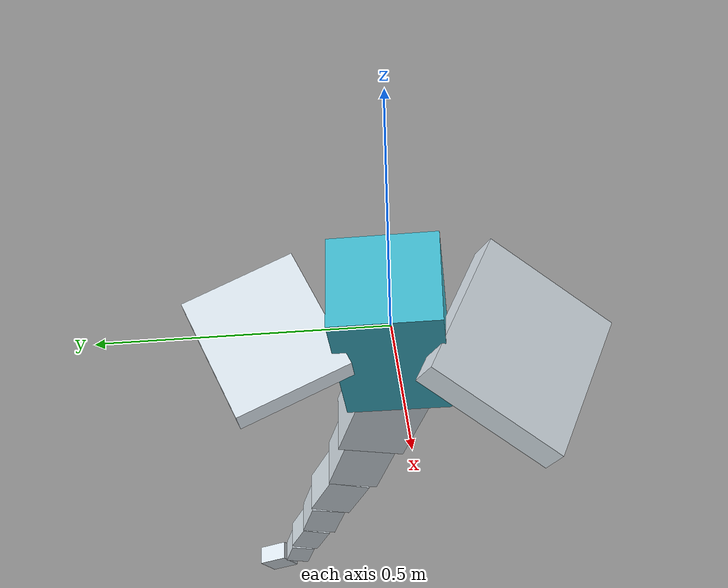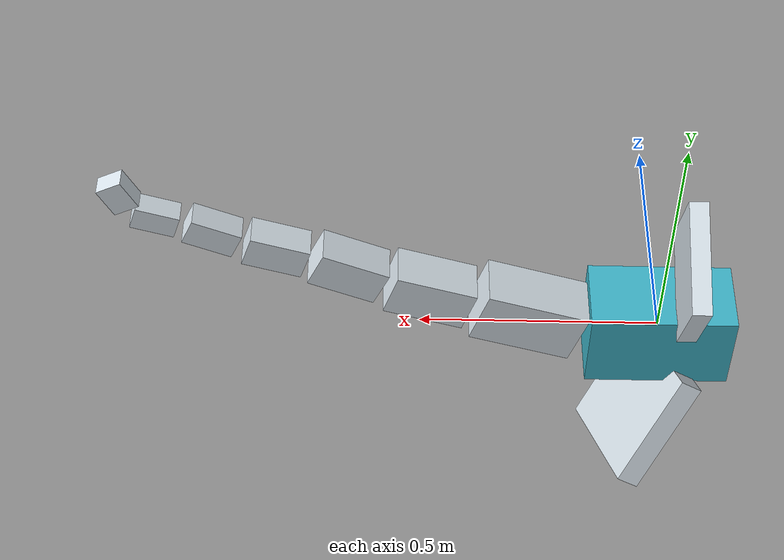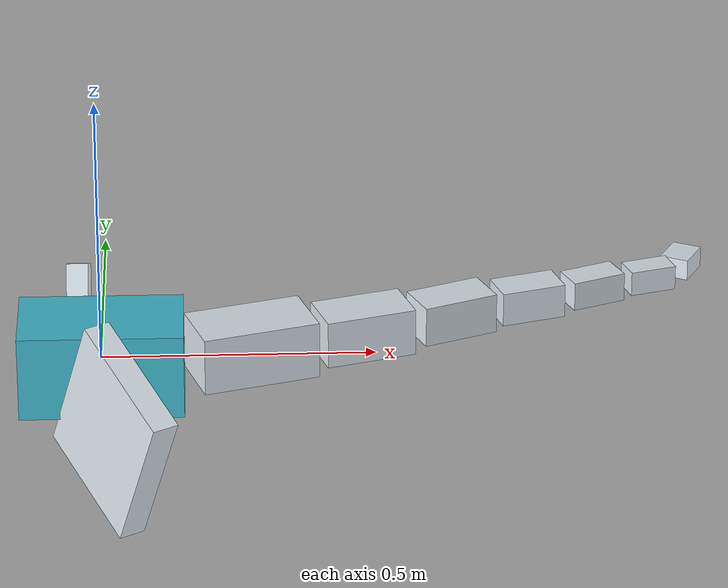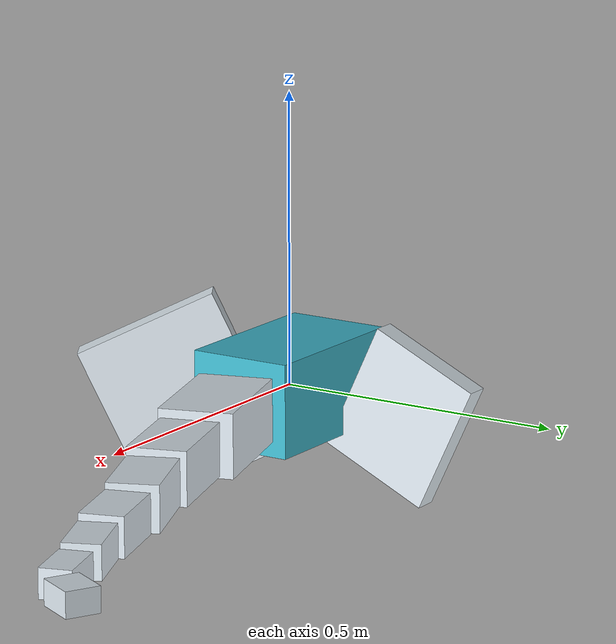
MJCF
<mujoco model="criatura">
  <compiler angle="degree" autolimits="true"/>
  <option timestep="0.002083" gravity="0 0 0" integrator="implicitfast"/>
  <default>
    <geom type="box" density="300.0" rgba="0.85 0.89 0.92 1"/>
    <joint type="hinge"/>
    <motor ctrlrange="-1 1"/>
  </default>
  <worldbody>
    <body name="p0_n0" pos="0.00000 0.00000 0.00000" quat="1.000000 0.000000 0.000000 0.000000">
      <freejoint name="raiz"/>
      <geom name="g_p0_n0" size="0.15000 0.09000 0.08000" rgba="0.25 0.72 0.8 1"/>
      <body name="p1_n1" pos="0.27399 0.03872 0.00000" quat="0.988568 0.000000 0.000000 0.150773">
        <joint name="p1_n1_j0" axis="1.0000 0.0000 0.0000" pos="-0.12989 0 0" range="-51.51 51.51" damping="0.6750"/>
        <joint name="p1_n1_j1" axis="0.0000 0.0000 1.0000" pos="-0.12989 0 0" range="-51.51 51.51" damping="0.6750"/>
        <geom name="g_p1_n1" size="0.10989 0.06240 0.05408"/>
        <body name="p2_n3" pos="0.21520 -0.00270 0.00000" quat="1.000000 0.000000 0.000000 0.000000">
          <joint name="p2_n3_j0" axis="1.0000 0.0000 0.0000" pos="-0.10531 0 0" range="-47.21 47.21" damping="0.4412"/>
          <joint name="p2_n3_j1" axis="0.0000 0.0000 1.0000" pos="-0.10531 0 0" range="-47.21 47.21" damping="0.4412"/>
          <geom name="g_p2_n3" size="0.08531 0.04922 0.04482"/>
          <body name="p3_n3" pos="0.17737 0.00920 0.00041" quat="0.998759 0.000000 0.000000 0.049798">
            <joint name="p3_n3_j0" axis="1.0000 0.0000 0.0000" pos="-0.09251 0 0" range="-47.21 47.21" damping="0.3188"/>
            <joint name="p3_n3_j1" axis="0.0000 0.0000 1.0000" pos="-0.09251 0 0" range="-47.21 47.21" damping="0.3188"/>
            <geom name="g_p3_n3" size="0.07251 0.04184 0.03810"/>
            <body name="p4_n3" pos="0.15375 -0.00812 0.00035" quat="0.998759 0.000000 0.000000 -0.049798">
              <joint name="p4_n3_j0" axis="1.0000 0.0000 0.0000" pos="-0.08164 0 0" range="-47.21 47.21" damping="0.2303"/>
              <joint name="p4_n3_j1" axis="0.0000 0.0000 1.0000" pos="-0.08164 0 0" range="-47.21 47.21" damping="0.2303"/>
              <geom name="g_p4_n3" size="0.06164 0.03556 0.03238"/>
              <body name="p5_n3" pos="0.13367 0.00720 0.00030" quat="0.998759 0.000000 0.000000 0.049798">
                <joint name="p5_n3_j0" axis="1.0000 0.0000 0.0000" pos="-0.07239 0 0" range="-47.21 47.21" damping="0.1664"/>
                <joint name="p5_n3_j1" axis="0.0000 0.0000 1.0000" pos="-0.07239 0 0" range="-47.21 47.21" damping="0.1664"/>
                <geom name="g_p5_n3" size="0.05239 0.03023 0.02753"/>
                <body name="p6_n3" pos="0.11660 -0.00642 0.00025" quat="0.998759 0.000000 0.000000 -0.049798">
                  <joint name="p6_n3_j0" axis="1.0000 0.0000 0.0000" pos="-0.06453 0 0" range="-47.21 47.21" damping="0.1202"/>
                  <joint name="p6_n3_j1" axis="0.0000 0.0000 1.0000" pos="-0.06453 0 0" range="-47.21 47.21" damping="0.1202"/>
                  <geom name="g_p6_n3" size="0.04453 0.02569 0.02340"/>
                  <body name="p7_n4" pos="0.08254 0.03872 0.00000" quat="0.922091 0.000000 0.000000 0.386973">
                    <joint name="p7_n4_j0" axis="0.0000 0.0000 1.0000" pos="-0.05426 0 0" range="-40.13 40.13" damping="0.1096"/>
                    <joint name="p7_n4_j1" axis="1.0000 0.0000 0.0000" pos="-0.05426 0 0" range="-40.13 40.13" damping="0.1096"/>
                    <geom name="g_p7_n4" size="0.03426 0.02740 0.02000"/>
                  </body>
                </body>
              </body>
            </body>
          </body>
        </body>
      </body>
      <body name="p8_n2" pos="-0.04500 0.19876 -0.03471" quat="0.596368 0.379928 0.596368 0.379928">
        <joint name="p8_n2_j0" axis="0.0000 0.0000 1.0000" pos="-0.12000 0 0" range="-49.68 49.68" damping="0.4676"/>
        <joint name="p8_n2_j1" axis="1.0000 0.0000 0.0000" pos="-0.12000 0 0" range="-49.68 49.68" damping="0.4676"/>
        <geom name="g_p8_n2" size="0.10000 0.11690 0.02000"/>
      </body>
      <body name="p9_n2" pos="0.02523 -0.20268 -0.04592" quat="0.677873 -0.529324 0.468845 -0.201216">
        <joint name="p9_n2_j0" axis="0.0000 0.0000 1.0000" pos="-0.14651 0 0" range="-49.68 49.68" damping="0.7483"/>
        <joint name="p9_n2_j1" axis="1.0000 0.0000 0.0000" pos="-0.14651 0 0" range="-49.68 49.68" damping="0.7483"/>
        <geom name="g_p9_n2" size="0.12651 0.14789 0.02530"/>
      </body>
    </body>
  </worldbody>
  <actuator>
    <motor name="m_p1_n1_j0" joint="p1_n1_j0" gear="-13.5000"/>
    <motor name="m_p1_n1_j1" joint="p1_n1_j1" gear="-13.5000"/>
    <motor name="m_p2_n3_j0" joint="p2_n3_j0" gear="8.8241"/>
    <motor name="m_p2_n3_j1" joint="p2_n3_j1" gear="8.8241"/>
    <motor name="m_p3_n3_j0" joint="p3_n3_j0" gear="-6.3754"/>
    <motor name="m_p3_n3_j1" joint="p3_n3_j1" gear="-6.3754"/>
    <motor name="m_p4_n3_j0" joint="p4_n3_j0" gear="4.6062"/>
    <motor name="m_p4_n3_j1" joint="p4_n3_j1" gear="4.6062"/>
    <motor name="m_p5_n3_j0" joint="p5_n3_j0" gear="-3.3280"/>
    <motor name="m_p5_n3_j1" joint="p5_n3_j1" gear="-3.3280"/>
    <motor name="m_p6_n3_j0" joint="p6_n3_j0" gear="2.4045"/>
    <motor name="m_p6_n3_j1" joint="p6_n3_j1" gear="2.4045"/>
    <motor name="m_p7_n4_j0" joint="p7_n4_j0" gear="2.1924"/>
    <motor name="m_p7_n4_j1" joint="p7_n4_j1" gear="2.1924"/>
    <motor name="m_p8_n2_j0" joint="p8_n2_j0" gear="9.3521"/>
    <motor name="m_p8_n2_j1" joint="p8_n2_j1" gear="9.3521"/>
    <motor name="m_p9_n2_j0" joint="p9_n2_j0" gear="-14.9669"/>
    <motor name="m_p9_n2_j1" joint="p9_n2_j1" gear="-14.9669"/>
  </actuator>
</mujoco>
